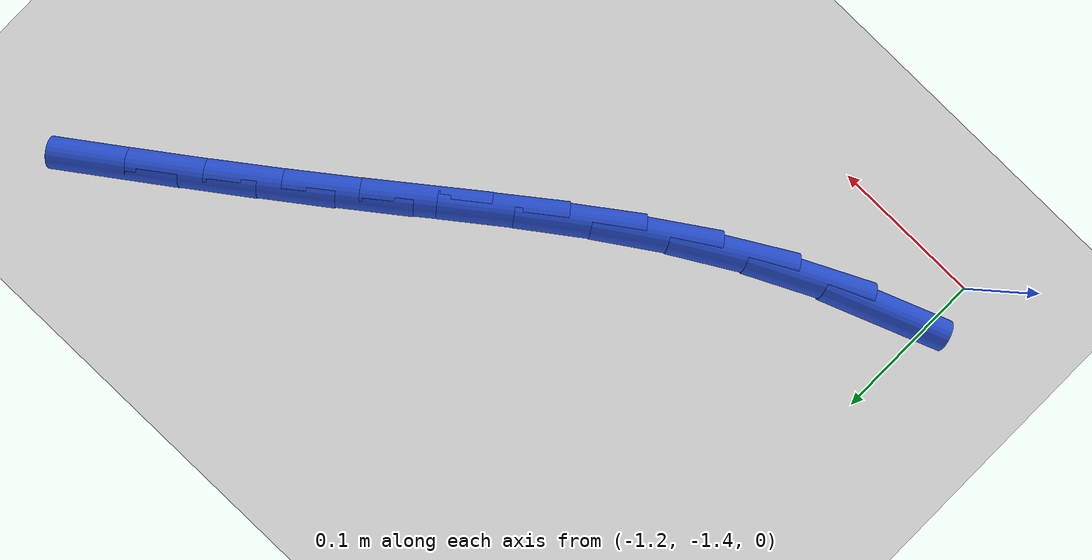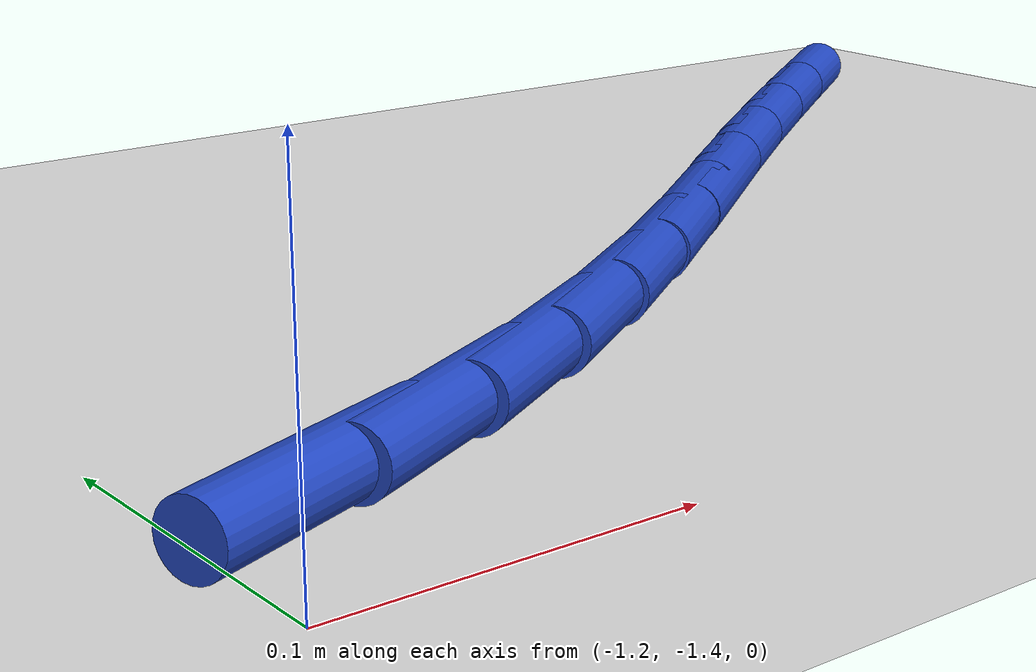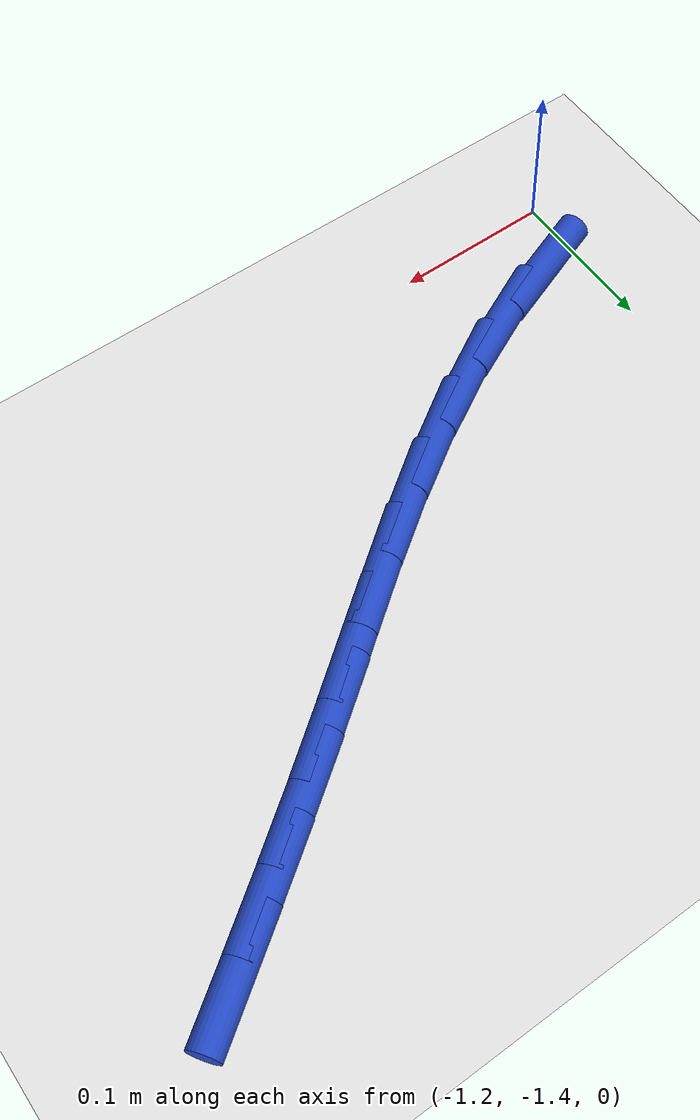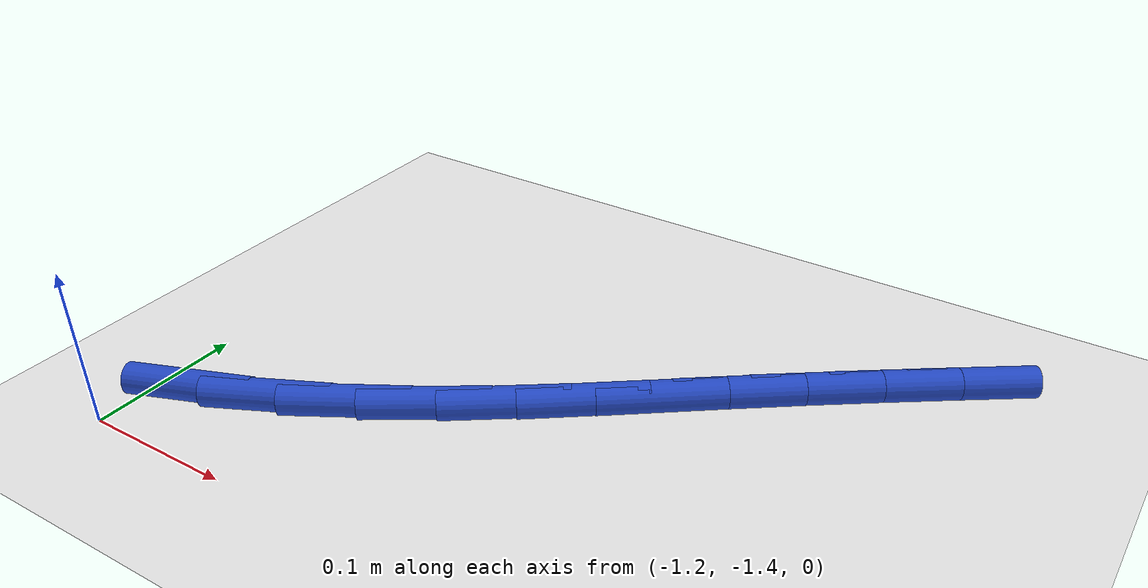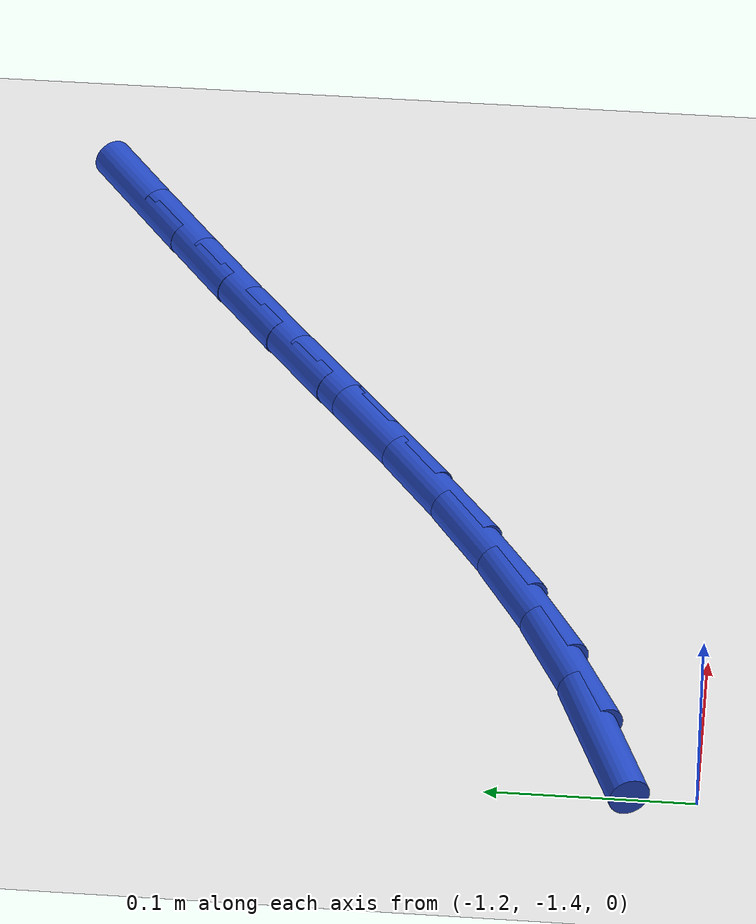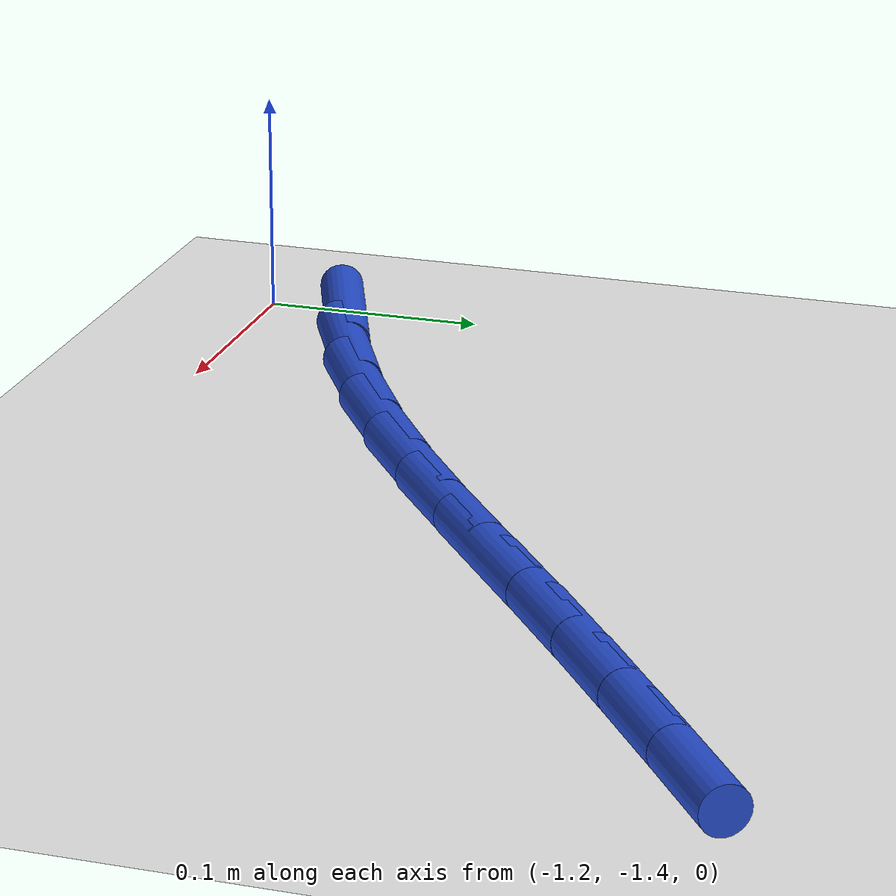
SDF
<sdf version="1.6">
 <world name="default">
  <model name="ground_plane">
   <static>1</static>
   <link name="link">
    <collision name="collision">
     <geometry><plane><normal>0 0 1</normal><size>100 100</size></plane></geometry>
     <surface><friction><ode><mu>100</mu><mu2>50</mu2></ode></friction></surface>
    </collision>
    <visual name="visual">
     <cast_shadows>0</cast_shadows>
     <geometry><plane><normal>0 0 1</normal><size>100 100</size></plane></geometry>
     <material>
      <script><uri>file://media/materials/scripts/gazebo.material</uri><name>Gazebo/WhiteGlow</name></script>
     </material>
    </visual>
   </link>
  </model>
  <model name="line">
   <link name="link_131">
    <pose>-1.1710032565763888 -1.353933420099089 0.01 0 1.57 0.37148649892993074</pose>
    <collision name="collision">
     <geometry><cylinder><radius>0.01</radius><length>0.08</length></cylinder></geometry>
    </collision>
    <visual name="visual">
     <material>
      <script><name>Gazebo/Blue</name><uri>file://media/materials/scripts/gazebo.material</uri></script>
     </material>
     <geometry><cylinder><radius>0.01</radius><length>0.08</length></cylinder></geometry>
    </visual>
   </link>
   <link name="link_132">
    <pose>-1.1242748180052196 -1.3357292225639033 0.01 0 1.57 0.45705169303525595</pose>
    <collision name="collision">
     <geometry><cylinder><radius>0.01</radius><length>0.08</length></cylinder></geometry>
    </collision>
    <visual name="visual">
     <material>
      <script><name>Gazebo/Blue</name><uri>file://media/materials/scripts/gazebo.material</uri></script>
     </material>
     <geometry><cylinder><radius>0.01</radius><length>0.08</length></cylinder></geometry>
    </visual>
   </link>
   <link name="link_133">
    <pose>-1.0806877034620208 -1.3142938603554932 0.01 0 1.57 0.5304535340039991</pose>
    <collision name="collision">
     <geometry><cylinder><radius>0.01</radius><length>0.08</length></cylinder></geometry>
    </collision>
    <visual name="visual">
     <material>
      <script><name>Gazebo/Blue</name><uri>file://media/materials/scripts/gazebo.material</uri></script>
     </material>
     <geometry><cylinder><radius>0.01</radius><length>0.08</length></cylinder></geometry>
    </visual>
   </link>
   <link name="link_134">
    <pose>-1.0396230696775552 -1.2902083682785297 0.01 0 1.57 0.5888375584536858</pose>
    <collision name="collision">
     <geometry><cylinder><radius>0.01</radius><length>0.08</length></cylinder></geometry>
    </collision>
    <visual name="visual">
     <material>
      <script><name>Gazebo/Blue</name><uri>file://media/materials/scripts/gazebo.material</uri></script>
     </material>
     <geometry><cylinder><radius>0.01</radius><length>0.08</length></cylinder></geometry>
    </visual>
   </link>
   <link name="link_135">
    <pose>-1.0004620733825869 -1.2640537811376837 0.01 0 1.57 0.6304575251210978</pose>
    <collision name="collision">
     <geometry><cylinder><radius>0.01</radius><length>0.08</length></cylinder></geometry>
    </collision>
    <visual name="visual">
     <material>
      <script><name>Gazebo/Blue</name><uri>file://media/materials/scripts/gazebo.material</uri></script>
     </material>
     <geometry><cylinder><radius>0.01</radius><length>0.08</length></cylinder></geometry>
    </visual>
   </link>
   <link name="link_136">
    <pose>-0.9625858713078785 -1.236411133737627 0.01 0 1.57 0.6544518322628405</pose>
    <collision name="collision">
     <geometry><cylinder><radius>0.01</radius><length>0.08</length></cylinder></geometry>
    </collision>
    <visual name="visual">
     <material>
      <script><name>Gazebo/Blue</name><uri>file://media/materials/scripts/gazebo.material</uri></script>
     </material>
     <geometry><cylinder><radius>0.01</radius><length>0.08</length></cylinder></geometry>
    </visual>
   </link>
   <link name="link_137">
    <pose>-0.9253756201841951 -1.2078614608830316 0.01 0 1.57 0.6605567105264148</pose>
    <collision name="collision">
     <geometry><cylinder><radius>0.01</radius><length>0.08</length></cylinder></geometry>
    </collision>
    <visual name="visual">
     <material>
      <script><name>Gazebo/Blue</name><uri>file://media/materials/scripts/gazebo.material</uri></script>
     </material>
     <geometry><cylinder><radius>0.01</radius><length>0.08</length></cylinder></geometry>
    </visual>
   </link>
   <link name="link_138">
    <pose>-0.8882124767422991 -1.1789857973785687 0.01 0 1.57 0.6505485164832443</pose>
    <collision name="collision">
     <geometry><cylinder><radius>0.01</radius><length>0.08</length></cylinder></geometry>
    </collision>
    <visual name="visual">
     <material>
      <script><name>Gazebo/Blue</name><uri>file://media/materials/scripts/gazebo.material</uri></script>
     </material>
     <geometry><cylinder><radius>0.01</radius><length>0.08</length></cylinder></geometry>
    </visual>
   </link>
   <link name="link_139">
    <pose>-0.8505363119747108 -1.1503115884743114 0.01 0 1.57 0.6377555640769144</pose>
    <collision name="collision">
     <geometry><cylinder><radius>0.01</radius><length>0.08</length></cylinder></geometry>
    </collision>
    <visual name="visual">
     <material>
      <script><name>Gazebo/Blue</name><uri>file://media/materials/scripts/gazebo.material</uri></script>
     </material>
     <geometry><cylinder><radius>0.01</radius><length>0.08</length></cylinder></geometry>
    </visual>
   </link>
   <link name="link_140">
    <pose>-0.8122527770683952 -1.1219411535239263 0.01 0 1.57 0.6283804289146387</pose>
    <collision name="collision">
     <geometry><cylinder><radius>0.01</radius><length>0.08</length></cylinder></geometry>
    </collision>
    <visual name="visual">
     <material>
      <script><name>Gazebo/Blue</name><uri>file://media/materials/scripts/gazebo.material</uri></script>
     </material>
     <geometry><cylinder><radius>0.01</radius><length>0.08</length></cylinder></geometry>
    </visual>
   </link>
   <link name="link_141">
    <pose>-0.7734894338649658 -1.0937742700660686 0.01 0 1.57 0.6223803406174065</pose>
    <collision name="collision">
     <geometry><cylinder><radius>0.01</radius><length>0.08</length></cylinder></geometry>
    </collision>
    <visual name="visual">
     <material>
      <script><name>Gazebo/Blue</name><uri>file://media/materials/scripts/gazebo.material</uri></script>
     </material>
     <geometry><cylinder><radius>0.01</radius><length>0.08</length></cylinder></geometry>
    </visual>
   </link>
  </model>
 </world>
</sdf>
